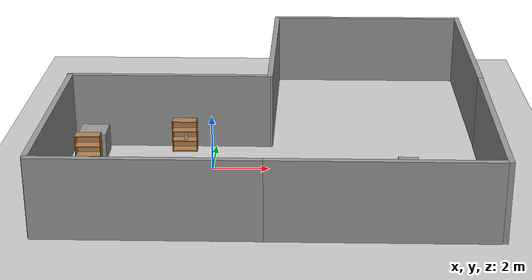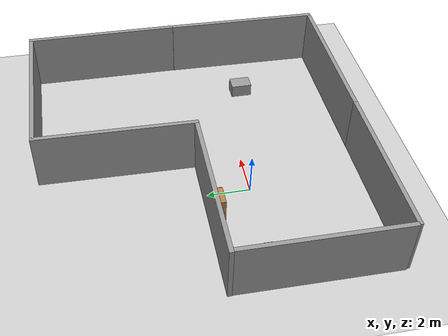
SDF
<sdf version="1.6">
 <world name="default">
  <light name="sun" type="directional">
   <pose>0 0 10 0 -0 0</pose>
   <diffuse>0.8 0.8 0.8 1</diffuse>
   <specular>0.1 0.1 0.1 1</specular>
   <attenuation>
    <range>1000</range>
    <constant>0.9</constant>
    <linear>0.01</linear>
    <quadratic>0.001</quadratic>
   </attenuation>
   <direction>-0.5 0.5 -1</direction>
  </light>
  <model name="ground_plane">
   <static>1</static>
   <link name="link">
    <collision name="collision">
     <geometry><plane><normal>0 0 1</normal><size>100 100</size></plane></geometry>
     <surface><friction><ode><mu>100</mu><mu2>50</mu2></ode></friction></surface>
    </collision>
    <visual name="visual">
     <cast_shadows>0</cast_shadows>
     <geometry><plane><normal>0 0 1</normal><size>100 100</size></plane></geometry>
     <material>
      <script><uri>file://media/materials/scripts/gazebo.material</uri><name>Gazebo/Grey</name></script>
     </material>
    </visual>
   </link>
  </model>
  <gravity>0 0 -9.8</gravity>
  <magnetic_field>6e-06 2.3e-05 -4.2e-05</magnetic_field>
  <atmosphere type="adiabatic"/>
  <physics name="default_physics" default="0" type="ode">
   <max_step_size>0.001</max_step_size>
   <real_time_factor>1</real_time_factor>
   <real_time_update_rate>1000</real_time_update_rate>
  </physics>
  <scene><ambient>0.4 0.4 0.4 1</ambient><background>0.7 0.7 0.7 1</background><shadows>1</shadows></scene>
  <spherical_coordinates>
   <surface_model>EARTH_WGS84</surface_model>
   <latitude_deg>0</latitude_deg>
   <longitude_deg>0</longitude_deg>
   <elevation>0</elevation>
   <heading_deg>0</heading_deg>
  </spherical_coordinates>
  <model name="bookshelf">
   <static>1</static>
   <link name="link">
    <inertial><mass>1</mass></inertial>
    <collision name="back">
     <pose>0 0.005 0.6 0 -0 0</pose>
     <geometry><box><size>0.9 0.01 1.2</size></box></geometry>
    </collision>
    <visual name="visual1">
     <pose>0 0.005 0.6 0 -0 0</pose>
     <geometry><box><size>0.9 0.01 1.2</size></box></geometry>
     <material>
      <script><uri>file://media/materials/scripts/gazebo.material</uri><name>Gazebo/Wood</name></script>
     </material>
    </visual>
    <collision name="left_side">
     <pose>0.45 -0.195 0.6 0 -0 0</pose>
     <geometry><box><size>0.02 0.4 1.2</size></box></geometry>
    </collision>
    <visual name="visual2">
     <pose>0.45 -0.195 0.6 0 -0 0</pose>
     <geometry><box><size>0.02 0.4 1.2</size></box></geometry>
     <material>
      <script><uri>file://media/materials/scripts/gazebo.material</uri><name>Gazebo/Wood</name></script>
     </material>
    </visual>
    <collision name="right_side">
     <pose>-0.45 -0.195 0.6 0 -0 0</pose>
     <geometry><box><size>0.02 0.4 1.2</size></box></geometry>
    </collision>
    <visual name="visual3">
     <pose>-0.45 -0.195 0.6 0 -0 0</pose>
     <geometry><box><size>0.02 0.4 1.2</size></box></geometry>
     <material>
      <script><uri>file://media/materials/scripts/gazebo.material</uri><name>Gazebo/Wood</name></script>
     </material>
    </visual>
    <collision name="bottom">
     <pose>0 -0.195 0.03 0 -0 0</pose>
     <geometry><box><size>0.88 0.4 0.06</size></box></geometry>
    </collision>
    <visual name="visual4">
     <pose>0 -0.195 0.03 0 -0 0</pose>
     <geometry><box><size>0.88 0.4 0.06</size></box></geometry>
     <material>
      <script><uri>file://media/materials/scripts/gazebo.material</uri><name>Gazebo/Wood</name></script>
     </material>
    </visual>
    <collision name="top">
     <pose>0 -0.195 1.19 0 -0 0</pose>
     <geometry><box><size>0.88 0.4 0.02</size></box></geometry>
    </collision>
    <visual name="visual5">
     <pose>0 -0.195 1.19 0 -0 0</pose>
     <geometry><box><size>0.88 0.4 0.02</size></box></geometry>
     <material>
      <script><uri>file://media/materials/scripts/gazebo.material</uri><name>Gazebo/Wood</name></script>
     </material>
    </visual>
    <collision name="low_shelf">
     <pose>0 -0.195 0.43 0 -0 0</pose>
     <geometry><box><size>0.88 0.4 0.02</size></box></geometry>
    </collision>
    <visual name="visual6">
     <pose>0 -0.195 0.43 0 -0 0</pose>
     <geometry><box><size>0.88 0.4 0.02</size></box></geometry>
     <material>
      <script><uri>file://media/materials/scripts/gazebo.material</uri><name>Gazebo/Wood</name></script>
     </material>
    </visual>
    <collision name="high_shelf">
     <pose>0 -0.195 0.8 0 -0 0</pose>
     <geometry><box><size>0.88 0.4 0.02</size></box></geometry>
    </collision>
    <visual name="visual7">
     <pose>0 -0.195 0.8 0 -0 0</pose>
     <geometry><box><size>0.88 0.4 0.02</size></box></geometry>
     <material>
      <script><uri>file://media/materials/scripts/gazebo.material</uri><name>Gazebo/Wood</name></script>
     </material>
    </visual>
   </link>
   <pose>-1.15244 1.86233 0 0 -0 0</pose>
  </model>
  <model name="grey_wall">
   <static>1</static>
   <link name="link">
    <pose>0 0 1.4 0 -0 0</pose>
    <collision name="collision"><geometry><box><size>7.5 0.2 2.8</size></box></geometry></collision>
    <visual name="visual">
     <cast_shadows>0</cast_shadows>
     <geometry><box><size>7.5 0.2 2.8</size></box></geometry>
     <material>
      <script>
       <uri>model://grey_wall/materials/scripts</uri>
       <uri>model://grey_wall/materials/textures</uri>
       <name>vrc/grey_wall</name>
      </script>
     </material>
    </visual>
   </link>
   <pose>-1.73722 2.12812 0 0 -0 0</pose>
  </model>
  <model name="grey_wall_0">
   <static>1</static>
   <link name="link">
    <pose>0 0 1.4 0 -0 0</pose>
    <collision name="collision"><geometry><box><size>7.5 0.2 2.8</size></box></geometry></collision>
    <visual name="visual">
     <cast_shadows>0</cast_shadows>
     <geometry><box><size>7.5 0.2 2.8</size></box></geometry>
     <material>
      <script>
       <uri>model://grey_wall/materials/scripts</uri>
       <uri>model://grey_wall/materials/textures</uri>
       <name>vrc/grey_wall</name>
      </script>
     </material>
    </visual>
   </link>
   <pose>2.05674 5.78418 0 0 0 -1.58676</pose>
  </model>
  <model name="grey_wall_1">
   <static>1</static>
   <link name="link">
    <pose>0 0 1.4 0 -0 0</pose>
    <collision name="collision"><geometry><box><size>7.5 0.2 2.8</size></box></geometry></collision>
    <visual name="visual">
     <cast_shadows>0</cast_shadows>
     <geometry><box><size>7.5 0.2 2.8</size></box></geometry>
     <material>
      <script>
       <uri>model://grey_wall/materials/scripts</uri>
       <uri>model://grey_wall/materials/textures</uri>
       <name>vrc/grey_wall</name>
      </script>
     </material>
    </visual>
   </link>
   <pose>5.89752 9.42625 0 0 -0 0</pose>
  </model>
  <model name="grey_wall_2">
   <static>1</static>
   <link name="link">
    <pose>0 0 1.4 0 -0 0</pose>
    <collision name="collision"><geometry><box><size>7.5 0.2 2.8</size></box></geometry></collision>
    <visual name="visual">
     <cast_shadows>0</cast_shadows>
     <geometry><box><size>7.5 0.2 2.8</size></box></geometry>
     <material>
      <script>
       <uri>model://grey_wall/materials/scripts</uri>
       <uri>model://grey_wall/materials/textures</uri>
       <name>vrc/grey_wall</name>
      </script>
     </material>
    </visual>
   </link>
   <pose>-1.6985 -5.36708 0 0 -0 0</pose>
  </model>
  <model name="grey_wall_3">
   <static>1</static>
   <link name="link">
    <pose>0 0 1.4 0 -0 0</pose>
    <collision name="collision"><geometry><box><size>7.5 0.2 2.8</size></box></geometry></collision>
    <visual name="visual">
     <cast_shadows>0</cast_shadows>
     <geometry><box><size>7.5 0.2 2.8</size></box></geometry>
     <material>
      <script>
       <uri>model://grey_wall/materials/scripts</uri>
       <uri>model://grey_wall/materials/textures</uri>
       <name>vrc/grey_wall</name>
      </script>
     </material>
    </visual>
   </link>
   <pose>5.73007 -5.36717 0 0 -0 0</pose>
  </model>
  <model name="grey_wall_4">
   <static>1</static>
   <link name="link">
    <pose>0 0 1.4 0 -0 0</pose>
    <collision name="collision"><geometry><box><size>7.5 0.2 2.8</size></box></geometry></collision>
    <visual name="visual">
     <cast_shadows>0</cast_shadows>
     <geometry><box><size>7.5 0.2 2.8</size></box></geometry>
     <material>
      <script>
       <uri>model://grey_wall/materials/scripts</uri>
       <uri>model://grey_wall/materials/textures</uri>
       <name>vrc/grey_wall</name>
      </script>
     </material>
    </visual>
   </link>
   <pose>9.62598 -1.69561 0 0 -0 1.55451</pose>
  </model>
  <model name="grey_wall_4_clone">
   <static>1</static>
   <link name="link">
    <pose>0 0 1.4 0 -0 0</pose>
    <collision name="collision"><geometry><box><size>7.5 0.2 2.8</size></box></geometry></collision>
    <visual name="visual">
     <cast_shadows>0</cast_shadows>
     <geometry><box><size>7.5 0.2 2.8</size></box></geometry>
     <material>
      <script>
       <uri>model://grey_wall/materials/scripts</uri>
       <uri>model://grey_wall/materials/textures</uri>
       <name>vrc/grey_wall</name>
      </script>
     </material>
    </visual>
   </link>
   <pose>9.71414 5.78294 0 0 0 -1.57526</pose>
  </model>
  <model name="grey_wall_4_clone_0">
   <static>1</static>
   <link name="link">
    <pose>0 0 1.4 0 -0 0</pose>
    <collision name="collision"><geometry><box><size>7.5 0.2 2.8</size></box></geometry></collision>
    <visual name="visual">
     <cast_shadows>0</cast_shadows>
     <geometry><box><size>7.5 0.2 2.8</size></box></geometry>
     <material>
      <script>
       <uri>model://grey_wall/materials/scripts</uri>
       <uri>model://grey_wall/materials/textures</uri>
       <name>vrc/grey_wall</name>
      </script>
     </material>
    </visual>
   </link>
   <pose>-5.38379 -1.57528 0 0 0 -1.57526</pose>
  </model>
  <model name="beer">
   <static>1</static>
   <link name="link">
    <pose>0 0 0.115 0 -0 0</pose>
    <inertial>
     <mass>0.39</mass>
     <inertia><ixx>0.00058</ixx><ixy>0</ixy><ixz>0</ixz><iyy>0.00058</iyy><iyz>0</iyz><izz>0.00019</izz></inertia>
    </inertial>
    <collision name="collision">
     <geometry><cylinder><radius>0.055</radius><length>0.23</length></cylinder></geometry>
    </collision>
    <visual name="visual">
     <geometry><cylinder><radius>0.055</radius><length>0.23</length></cylinder></geometry>
     <material>
      <script>
       <uri>model://beer/materials/scripts</uri>
       <uri>model://beer/materials/textures</uri>
       <name>Beer/Diffuse</name>
      </script>
     </material>
    </visual>
   </link>
   <pose>-1.10858 1.56901 0.440572 0 -0 0</pose>
  </model>
  <model name="unit_box_0">
   <static>1</static>
   <pose>-4.43844 1.17911 0.499995 -1e-05 0 0</pose>
   <link name="link">
    <inertial>
     <mass>1</mass>
     <inertia>
      <ixx>0.166667</ixx>
      <ixy>0</ixy>
      <ixz>0</ixz>
      <iyy>0.166667</iyy>
      <iyz>0</iyz>
      <izz>0.166667</izz>
     </inertia>
    </inertial>
    <collision name="collision"><geometry><box><size>1 1 1</size></box></geometry></collision>
    <visual name="visual">
     <geometry><box><size>1 1 1</size></box></geometry>
     <material>
      <script><name>Gazebo/Grey</name><uri>file://media/materials/scripts/gazebo.material</uri></script>
     </material>
    </visual>
   </link>
  </model>
  <model name="unit_box_1">
   <static>1</static>
   <pose>6.92186 -1.07048 0.465071 0 1e-05 0.001087</pose>
   <link name="link">
    <inertial>
     <mass>1</mass>
     <inertia>
      <ixx>0.166667</ixx>
      <ixy>0</ixy>
      <ixz>0</ixz>
      <iyy>0.166667</iyy>
      <iyz>0</iyz>
      <izz>0.166667</izz>
     </inertia>
    </inertial>
    <collision name="collision"><geometry><box><size>0.701422 1 0.642182</size></box></geometry></collision>
    <visual name="visual">
     <geometry><box><size>0.701422 1 0.642182</size></box></geometry>
     <material>
      <script><name>Gazebo/Grey</name><uri>file://media/materials/scripts/gazebo.material</uri></script>
     </material>
    </visual>
   </link>
  </model>
  <model name="bookshelf_0">
   <static>1</static>
   <link name="link">
    <inertial><mass>1</mass></inertial>
    <collision name="back">
     <pose>0 0.005 0.6 0 -0 0</pose>
     <geometry><box><size>0.9 0.01 1.2</size></box></geometry>
    </collision>
    <visual name="visual1">
     <pose>0 0.005 0.6 0 -0 0</pose>
     <geometry><box><size>0.9 0.01 1.2</size></box></geometry>
     <material>
      <script><uri>file://media/materials/scripts/gazebo.material</uri><name>Gazebo/Wood</name></script>
     </material>
    </visual>
    <collision name="left_side">
     <pose>0.45 -0.195 0.6 0 -0 0</pose>
     <geometry><box><size>0.02 0.4 1.2</size></box></geometry>
    </collision>
    <visual name="visual2">
     <pose>0.45 -0.195 0.6 0 -0 0</pose>
     <geometry><box><size>0.02 0.4 1.2</size></box></geometry>
     <material>
      <script><uri>file://media/materials/scripts/gazebo.material</uri><name>Gazebo/Wood</name></script>
     </material>
    </visual>
    <collision name="right_side">
     <pose>-0.45 -0.195 0.6 0 -0 0</pose>
     <geometry><box><size>0.02 0.4 1.2</size></box></geometry>
    </collision>
    <visual name="visual3">
     <pose>-0.45 -0.195 0.6 0 -0 0</pose>
     <geometry><box><size>0.02 0.4 1.2</size></box></geometry>
     <material>
      <script><uri>file://media/materials/scripts/gazebo.material</uri><name>Gazebo/Wood</name></script>
     </material>
    </visual>
    <collision name="bottom">
     <pose>0 -0.195 0.03 0 -0 0</pose>
     <geometry><box><size>0.88 0.4 0.06</size></box></geometry>
    </collision>
    <visual name="visual4">
     <pose>0 -0.195 0.03 0 -0 0</pose>
     <geometry><box><size>0.88 0.4 0.06</size></box></geometry>
     <material>
      <script><uri>file://media/materials/scripts/gazebo.material</uri><name>Gazebo/Wood</name></script>
     </material>
    </visual>
    <collision name="top">
     <pose>0 -0.195 1.19 0 -0 0</pose>
     <geometry><box><size>0.88 0.4 0.02</size></box></geometry>
    </collision>
    <visual name="visual5">
     <pose>0 -0.195 1.19 0 -0 0</pose>
     <geometry><box><size>0.88 0.4 0.02</size></box></geometry>
     <material>
      <script><uri>file://media/materials/scripts/gazebo.material</uri><name>Gazebo/Wood</name></script>
     </material>
    </visual>
    <collision name="low_shelf">
     <pose>0 -0.195 0.43 0 -0 0</pose>
     <geometry><box><size>0.88 0.4 0.02</size></box></geometry>
    </collision>
    <visual name="visual6">
     <pose>0 -0.195 0.43 0 -0 0</pose>
     <geometry><box><size>0.88 0.4 0.02</size></box></geometry>
     <material>
      <script><uri>file://media/materials/scripts/gazebo.material</uri><name>Gazebo/Wood</name></script>
     </material>
    </visual>
    <collision name="high_shelf">
     <pose>0 -0.195 0.8 0 -0 0</pose>
     <geometry><box><size>0.88 0.4 0.02</size></box></geometry>
    </collision>
    <visual name="visual7">
     <pose>0 -0.195 0.8 0 -0 0</pose>
     <geometry><box><size>0.88 0.4 0.02</size></box></geometry>
     <material>
      <script><uri>file://media/materials/scripts/gazebo.material</uri><name>Gazebo/Wood</name></script>
     </material>
    </visual>
   </link>
   <pose>-4.49201 0.413298 0 0 -0 0</pose>
  </model>
 </world>
</sdf>
